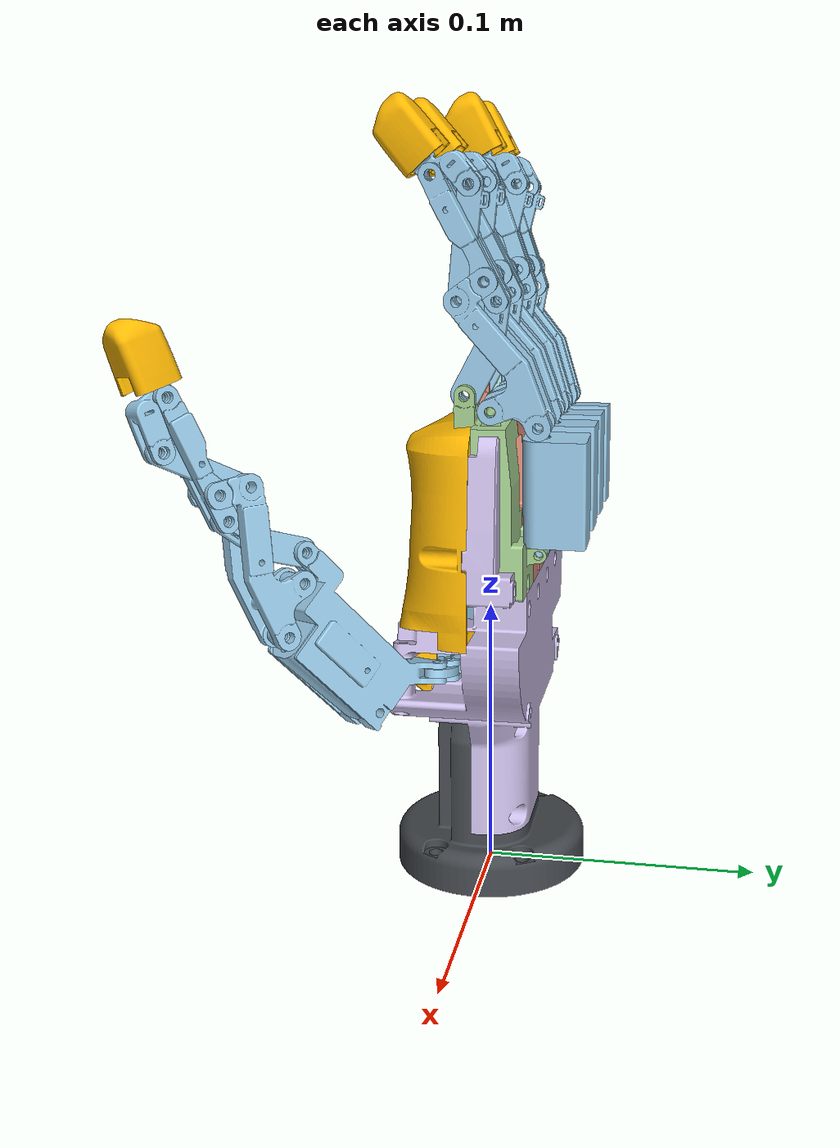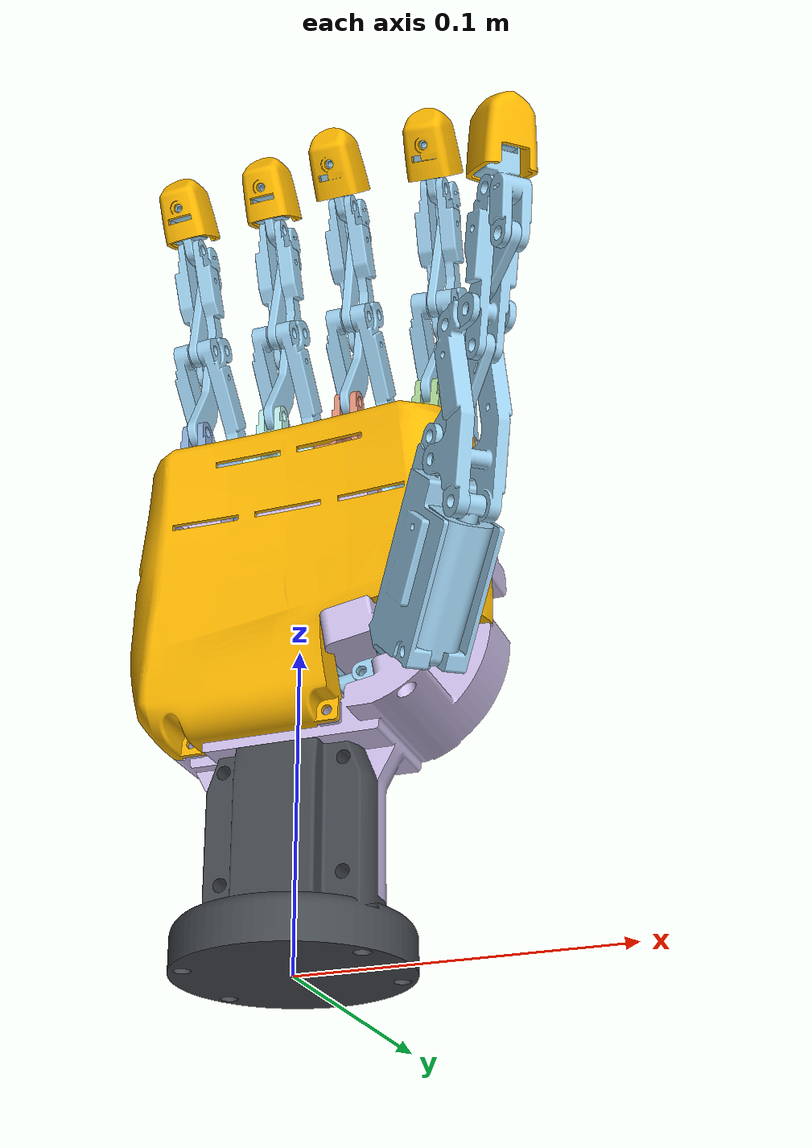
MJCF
<?xml version="1.0" ?>
<!-- Generated using onshape-to-robot -->
<!-- Onshape https://cad.onshape.com/documents/0a0f899ce59c60b61859c991/w/d22d541f278fbcb2dfd45b88/e/3d0f6edf0206f9f0b58d8fd9 -->
<mujoco model="bananaHand">
  <compiler angle="radian" meshdir="assets" autolimits="true"/>
  <default>
    <default class="bananaHand">
      <joint damping="0.0005"/>
      <position kp="2000" dampratio="0.0001"/>
      <default class="visual">
        <geom type="mesh" contype="0" conaffinity="0" group="2"/>
      </default>
      <default class="collision">
        <geom group="3"/>
      </default>
    </default>
  </default>
  <worldbody>
    <!-- Link wrist_mount -->
    <body name="wrist_mount" pos="0 0 0" quat="1 0 0 0" childclass="bananaHand">
      <inertial pos="-6.18886e-06 -0.00237089 0.0161077" mass="0.103992" fullinertia="5.21252e-05 5.33286e-05 5.15278e-05 -3.087e-09 2.8937e-08 6.35601e-06"/>
      <!-- Part wrist_mount -->
      <geom type="mesh" class="visual" pos="-0.00291653 -0 0.0813183" quat="1 -0 -0 -0" mesh="wrist_mount" material="wrist_mount_material"/>
      <!-- Link hand_base -->
      <body name="hand_base" pos="-0.01886 -0.003 0.05977" quat="0.707107 0.707107 -0 0">
        <!-- Joint from wrist_mount to hand_base -->
        <!-- Joint is "fixed", skipping it -->
        <inertial pos="0.0227711 0.0368198 -0.00970441" mass="0.24691" fullinertia="0.00031481 0.000210808 0.000492602 4.41066e-06 -8.72699e-06 6.42656e-06"/>
        <!-- Part hand_base -->
        <geom type="mesh" class="visual" pos="0.0159435 0.0215483 -0.003" quat="0.707107 -0.707107 0 -0" mesh="hand_base" material="hand_base_material"/>
        <!-- Frame closing_thumbpivot_1 -->
        <site group="3" name="closing_thumbpivot_1" pos="0.058502 0.0313007 0.0215" quat="0.704416 0.704416 0.0616284 0.0616284"/>
        <!-- Frame closing_thumbpivot_1_z -->
        <site group="3" name="closing_thumbpivot_1_z" pos="0.0758669 -0.0671801 0.0215" quat="0.704416 0.704416 0.0616284 0.0616284"/>
        <!-- Link index_base -->
        <body name="index_base" pos="0.0607318 0.108855 -0.008" quat="0 -1 0 -0">
          <!-- Joint from hand_base to index_base -->
          <!-- Joint is "fixed", skipping it -->
          <inertial pos="-0.000915189 0.0173428 0.00659471" mass="0.00908632" fullinertia="3.91326e-06 7.16004e-07 3.97477e-06 9.919e-08 2.4255e-08 -8.53174e-07"/>
          <!-- Part index_base -->
          <geom type="mesh" class="visual" pos="-0.0447883 0.0873066 -0.005" quat="0.707107 0.707107 -0 -0" mesh="index_base" material="index_base_material"/>
          <!-- Frame closing_indexrev3_2 -->
          <site group="3" name="closing_indexrev3_2" pos="-0.00379499 -0.0116902 0.003" quat="0.0293023 -0.706499 -0.0293023 -0.706499"/>
          <!-- Frame closing_indexrev3_2_z -->
          <site group="3" name="closing_indexrev3_2_z" pos="0.0958616 -0.00340937 0.003" quat="0.0293023 -0.706499 -0.0293023 -0.706499"/>
          <!-- Link actuator_housing -->
          <body name="actuator_housing" pos="-0.000613381 0.0375721 0.0185" quat="0.706541 -0.030325 0.706456 0.0282795">
            <!-- Joint from index_base to actuator_housing -->
            <joint axis="0 0 1" name="indexrev1" type="hinge"/>
            <inertial pos="-0.00615503 -0.0206966 -0.0025" mass="0.012849" fullinertia="1.75829e-06 7.16933e-07 1.97489e-06 -4.3769e-08 -0 -0"/>
            <!-- Part actuator_housing -->
            <geom type="mesh" class="visual" pos="0 -0.003 -0.0025" quat="0.707107 0.707107 -0 0" mesh="actuator_housing" material="actuator_housing_material"/>
            <!-- Link actuator_piston -->
            <body name="actuator_piston" pos="-0 -0.00975 -0.0025" quat="0 -0 0.707107 0.707107">
              <!-- Joint from actuator_housing to actuator_piston -->
              <joint axis="0 0 1" name="indexpiston" type="slide" range="-0.01825000000000018 -1.7802599672211983e-16"/>
              <inertial pos="-0 -0 -0.0184461" mass="0.00107731" fullinertia="1.20116e-07 1.20153e-07 4.363e-09 0 0 0"/>
              <!-- Part actuator_piston -->
              <geom type="mesh" class="visual" pos="-0 -0 0" quat="0 1 0 0" mesh="actuator_piston" material="actuator_piston_material"/>
              <!-- Link mcp_1 -->
              <body name="mcp_1" pos="-0 -0.00314 -0.0341" quat="0.696301 -0.696301 0.123148 0.123148">
                <!-- Joint from actuator_piston to mcp_1 -->
                <joint axis="0 0 1" name="indexrev2" type="hinge"/>
                <inertial pos="-0.00396774 0.02456 0.00314" mass="0.00589055" fullinertia="1.69298e-06 3.16979e-07 1.6373e-06 1.9048e-07 -0 -0"/>
                <!-- Part mcp_1 -->
                <geom type="mesh" class="visual" pos="-0.013 0.01 0.00314" quat="0.707107 -0.707107 -0 -0" mesh="mcp_1" material="mcp_1_material"/>
                <!-- Frame closing_indexrev3_1 -->
                <site group="3" name="closing_indexrev3_1" pos="-0.013 0.01 -0.00161" quat="1 0 0 0"/>
                <!-- Frame closing_indexrev3_1_z -->
                <site group="3" name="closing_indexrev3_1_z" pos="-0.013 0.01 0.09839" quat="1 0 0 0"/>
                <!-- Frame closing_indexrev7_2 -->
                <site group="3" name="closing_indexrev7_2" pos="0 0.05 0.00774" quat="1 0 0 0"/>
                <!-- Frame closing_indexrev7_2_z -->
                <site group="3" name="closing_indexrev7_2_z" pos="0 0.05 0.10774" quat="1 0 0 0"/>
                <!-- Link pip_2 -->
                <body name="pip_2" pos="-0.0106252 0.047153 0.00464" quat="0.973728 0 0 -0.227713">
                  <!-- Joint from mcp_1 to pip_2 -->
                  <joint axis="0 0 1" name="indexrev5" type="hinge"/>
                  <inertial pos="-3.24138e-05 0.0189849 -0.0015" mass="0.00113266" fullinertia="1.54822e-07 7.08e-09 1.60354e-07 -3.423e-09 0 -0"/>
                  <!-- Part pip_2 -->
                  <geom type="mesh" class="visual" pos="0 0.015 -0.0015" quat="0.707107 -0.707107 -0 0" mesh="pip_2" material="pip_2_material"/>
                  <!-- Link dip_1 -->
                  <body name="dip_1" pos="-0 0.0365 0.0001" quat="0 0.918852 0.394602 -0">
                    <!-- Joint from pip_2 to dip_1 -->
                    <joint axis="0 0 1" name="indexrev8" type="hinge" range="-1.2831247046461076 0.08370581700023294"/>
                    <inertial pos="-0.00485498 -0.0148401 0.0016" mass="0.00216187" fullinertia="1.7401e-07 5.3677e-08 1.93366e-07 -5.2995e-08 0 -0"/>
                    <!-- Part dip_1 -->
                    <geom type="mesh" class="visual" pos="-0.0075 -0.01 0.0016" quat="0.707107 0.707107 0 0" mesh="dip_1" material="dip_1_material"/>
                    <!-- Frame closing_indexrev9_1 -->
                    <site group="3" name="closing_indexrev9_1" pos="-0.0075 -0.01 0.0001" quat="0 1 0 0"/>
                    <!-- Frame closing_indexrev9_1_z -->
                    <site group="3" name="closing_indexrev9_1_z" pos="-0.0075 -0.01 -0.0999" quat="0 1 0 0"/>
                    <!-- Link fingertip -->
                    <body name="fingertip" pos="-0.00325 -0.025 0.0016" quat="0.707107 0 -0.707107 -0">
                      <!-- Joint from dip_1 to fingertip -->
                      <!-- Joint is "fixed", skipping it -->
                      <inertial pos="-1.53313e-05 -5.21544e-05 0.00584875" mass="0.00193004" fullinertia="1.24126e-07 1.07425e-07 1.27251e-07 -1.77e-10 4.9e-11 -9.13e-09"/>
                      <!-- Part fingertip -->
                      <geom type="mesh" class="visual" pos="0 0.015 0.00425" quat="0.5 0.5 0.5 -0.5" mesh="fingertip" material="fingertip_material"/>
                    </body>
                  </body>
                </body>
              </body>
            </body>
          </body>
          <!-- Link mcp_2 -->
          <body name="mcp_2" pos="-0.000183516 -0.0159056 -0.006" quat="0.677803 -0.144632 -0.692157 0.201452">
            <!-- Joint from index_base to mcp_2 -->
            <joint axis="0 0 1" name="indexrev4" type="hinge"/>
            <inertial pos="-0.000980814 -0.0151619 -0.0015" mass="0.00128032" fullinertia="1.51146e-07 1.3562e-08 1.62937e-07 -1.728e-08 0 -0"/>
            <!-- Part mcp_2 -->
            <geom type="mesh" class="visual" pos="-0 0 -0.0015" quat="0.5 0.5 0.5 -0.5" mesh="mcp_2" material="mcp_2_material"/>
            <!-- Link pip_1 -->
            <body name="pip_1" pos="-0.005 -0.0325 -0.0031" quat="0.883363 0 0 -0.46869">
              <!-- Joint from mcp_2 to pip_1 -->
              <joint axis="0 0 1" name="indexrev6" type="hinge" range="-0.98788114855292 0.10779664540511469"/>
              <inertial pos="0.000173285 -0.0227423 0.0016" mass="0.00231455" fullinertia="4.46291e-07 3.2362e-08 4.34547e-07 -2.143e-09 -0 0"/>
              <!-- Part pip_1 -->
              <geom type="mesh" class="visual" pos="-0 -0.0074 0.0016" quat="0.707107 0.707107 0 0" mesh="pip_1" material="pip_1_material"/>
              <!-- Frame closing_indexrev7_1 -->
              <site group="3" name="closing_indexrev7_1" pos="0 -0.0074 -0.003" quat="0 1 0 0"/>
              <!-- Frame closing_indexrev7_1_z -->
              <site group="3" name="closing_indexrev7_1_z" pos="0 -0.0074 -0.103" quat="0 1 0 0"/>
              <!-- Frame closing_indexrev9_2 -->
              <site group="3" name="closing_indexrev9_2" pos="0 -0.0444 0.0001" quat="0 1 0 0"/>
              <!-- Frame closing_indexrev9_2_z -->
              <site group="3" name="closing_indexrev9_2_z" pos="0 -0.0444 -0.0999" quat="0 1 0 0"/>
            </body>
          </body>
        </body>
        <!-- Link middle_base -->
        <body name="middle_base" pos="0.0343032 0.108855 -0.008" quat="0 -1 0 -0">
          <!-- Joint from hand_base to middle_base -->
          <!-- Joint is "fixed", skipping it -->
          <inertial pos="-0.00110743 0.0165611 0.00645915" mass="0.00951968" fullinertia="4.19962e-06 7.54185e-07 4.25616e-06 -1.1399e-08 1.5511e-08 -9.14817e-07"/>
          <!-- Part middle_base -->
          <geom type="mesh" class="visual" pos="-0.0183597 0.0873066 -0.005" quat="0.707107 0.707107 -0 0" mesh="middle_base" material="middle_base_material"/>
          <!-- Frame closing_middlerev3_2 -->
          <site group="3" name="closing_middlerev3_2" pos="0.00496225 -0.0121185 0.003" quat="0.70708 0.00617059 -0.70708 0.00617059"/>
          <!-- Frame closing_middlerev3_2_z -->
          <site group="3" name="closing_middlerev3_2_z" pos="-0.0950225 -0.0138638 0.003" quat="0.70708 0.00617059 -0.70708 0.00617059"/>
          <!-- Link actuator_housing_2 -->
          <body name="actuator_housing_2" pos="0.0018604 0.0366644 0.0185" quat="0.707088 -0.00724924 0.70707 0.00509193">
            <!-- Joint from middle_base to actuator_housing_2 -->
            <joint axis="0 0 1" name="middlerev1" type="hinge"/>
            <inertial pos="-0.00615503 -0.0206966 -0.0025" mass="0.012849" fullinertia="1.75829e-06 7.16933e-07 1.97489e-06 -4.3769e-08 -0 0"/>
            <!-- Part actuator_housing_2 -->
            <geom type="mesh" class="visual" pos="0 -0.003 -0.0025" quat="0.707107 0.707107 -0 -0" mesh="actuator_housing" material="actuator_housing_material"/>
            <!-- Link actuator_piston_2 -->
            <body name="actuator_piston_2" pos="-0 -0.0097717 -0.0025" quat="0 0 -0.707107 -0.707107">
              <!-- Joint from actuator_housing_2 to actuator_piston_2 -->
              <joint axis="0 0 1" name="middlepiston" type="slide" range="-0.018228303046465586 2.169695353441514e-05"/>
              <inertial pos="0 -0 -0.0184461" mass="0.00107731" fullinertia="1.20116e-07 1.20153e-07 4.363e-09 0 0 -0"/>
              <!-- Part actuator_piston_2 -->
              <geom type="mesh" class="visual" pos="0 0 -0" quat="0 1 0 0" mesh="actuator_piston" material="actuator_piston_material"/>
              <!-- Link mcp_1_2 -->
              <body name="mcp_1_2" pos="0 0.0036 -0.0341" quat="0.696206 0.696206 0.123685 -0.123685">
                <!-- Joint from actuator_piston_2 to mcp_1_2 -->
                <joint axis="0 0 1" name="middlerev2" type="hinge"/>
                <inertial pos="-0.00396774 -0.02456 0.0036" mass="0.00589055" fullinertia="1.69298e-06 3.16979e-07 1.6373e-06 -1.9048e-07 0 -0"/>
                <!-- Part mcp_1_2 -->
                <geom type="mesh" class="visual" pos="-0.013 -0.01 0.0036" quat="0.707107 0.707107 -0 -0" mesh="mcp_1" material="mcp_1_material"/>
                <!-- Frame closing_middlerev3_1 -->
                <site group="3" name="closing_middlerev3_1" pos="-0.013 -0.01 -0.00115" quat="1 -0 0 0"/>
                <!-- Frame closing_middlerev3_1_z -->
                <site group="3" name="closing_middlerev3_1_z" pos="-0.013 -0.01 0.09885" quat="1 -0 0 0"/>
                <!-- Frame closing_middlerev7_2 -->
                <site group="3" name="closing_middlerev7_2" pos="0 -0.05 -0.001" quat="0 1 0 0"/>
                <!-- Frame closing_middlerev7_2_z -->
                <site group="3" name="closing_middlerev7_2_z" pos="0 -0.05 -0.101" quat="0 1 0 0"/>
                <!-- Link pip_2_2 -->
                <body name="pip_2_2" pos="-0.0106252 -0.047153 0.0021" quat="0 -0.973953 -0.226751 0">
                  <!-- Joint from mcp_1_2 to pip_2_2 -->
                  <joint axis="0 0 1" name="middlerev5" type="hinge"/>
                  <inertial pos="-3.24138e-05 0.0189849 -0.0015" mass="0.00113266" fullinertia="1.54822e-07 7.08e-09 1.60354e-07 -3.423e-09 0 0"/>
                  <!-- Part pip_2_2 -->
                  <geom type="mesh" class="visual" pos="0 0.015 -0.0015" quat="0.707107 -0.707107 -0 0" mesh="pip_2" material="pip_2_material"/>
                  <!-- Link dip_1_2 -->
                  <body name="dip_1_2" pos="0 0.0365 0.0001" quat="0 -0.918403 -0.395646 -0">
                    <!-- Joint from pip_2_2 to dip_1_2 -->
                    <joint axis="0 0 1" name="middlerev8" type="hinge" range="-1.2808536958560035 0.08597682579033705"/>
                    <inertial pos="-0.00485498 -0.0148401 0.0016" mass="0.00216187" fullinertia="1.7401e-07 5.3677e-08 1.93366e-07 -5.2995e-08 0 -0"/>
                    <!-- Part dip_1_2 -->
                    <geom type="mesh" class="visual" pos="-0.0075 -0.01 0.0016" quat="0.707107 0.707107 0 0" mesh="dip_1" material="dip_1_material"/>
                    <!-- Frame closing_middlerev9_1 -->
                    <site group="3" name="closing_middlerev9_1" pos="-0.0075 -0.01 0.0001" quat="0 1 0 0"/>
                    <!-- Frame closing_middlerev9_1_z -->
                    <site group="3" name="closing_middlerev9_1_z" pos="-0.0075 -0.01 -0.0999" quat="0 1 0 0"/>
                    <!-- Link fingertip_2 -->
                    <body name="fingertip_2" pos="-0.00325 -0.025 0.0016" quat="0.707107 -0 -0.707107 -0">
                      <!-- Joint from dip_1_2 to fingertip_2 -->
                      <!-- Joint is "fixed", skipping it -->
                      <inertial pos="-1.53313e-05 -5.21544e-05 0.00584875" mass="0.00193004" fullinertia="1.24126e-07 1.07425e-07 1.27251e-07 -1.77e-10 4.9e-11 -9.13e-09"/>
                      <!-- Part fingertip_2 -->
                      <geom type="mesh" class="visual" pos="0 0.015 0.00425" quat="0.5 0.5 0.5 -0.5" mesh="fingertip" material="fingertip_material"/>
                    </body>
                  </body>
                </body>
              </body>
            </body>
          </body>
          <!-- Link mcp_2_2 -->
          <body name="mcp_2_2" pos="0.00179128 -0.0166746 -0.006" quat="0.166841 0.684125 0.178808 0.687142">
            <!-- Joint from middle_base to mcp_2_2 -->
            <joint axis="0 0 1" name="middlerev4" type="hinge"/>
            <inertial pos="-0.000980814 0.0151619 -0.0015" mass="0.00128032" fullinertia="1.51146e-07 1.3562e-08 1.62937e-07 1.728e-08 0 0"/>
            <!-- Part mcp_2_2 -->
            <geom type="mesh" class="visual" pos="-0 0 -0.0015" quat="0.5 -0.5 -0.5 -0.5" mesh="mcp_2" material="mcp_2_material"/>
            <!-- Link pip_1_2 -->
            <body name="pip_1_2" pos="-0.005 0.0325 0.0001" quat="0 -0.882685 -0.469965 -0">
              <!-- Joint from mcp_2_2 to pip_1_2 -->
              <joint axis="0 0 1" name="middlerev6" type="hinge" range="-0.984993611771781 0.11068418218625364"/>
              <inertial pos="0.000173285 -0.0227423 0.0016" mass="0.00231455" fullinertia="4.46291e-07 3.2362e-08 4.34547e-07 -2.143e-09 0 -0"/>
              <!-- Part pip_1_2 -->
              <geom type="mesh" class="visual" pos="0 -0.0074 0.0016" quat="0.707107 0.707107 -0 -0" mesh="pip_1" material="pip_1_material"/>
              <!-- Frame closing_middlerev7_1 -->
              <site group="3" name="closing_middlerev7_1" pos="0 -0.0074 -0.003" quat="0 1 0 0"/>
              <!-- Frame closing_middlerev7_1_z -->
              <site group="3" name="closing_middlerev7_1_z" pos="0 -0.0074 -0.103" quat="0 1 0 0"/>
              <!-- Frame closing_middlerev9_2 -->
              <site group="3" name="closing_middlerev9_2" pos="-0 -0.0444 0.0001" quat="0 1 0 0"/>
              <!-- Frame closing_middlerev9_2_z -->
              <site group="3" name="closing_middlerev9_2_z" pos="0 -0.0444 -0.0999" quat="0 1 0 0"/>
            </body>
          </body>
        </body>
        <!-- Link ring_base -->
        <body name="ring_base" pos="0.00840738 0.108855 -0.008" quat="0 -1 0 -0">
          <!-- Joint from hand_base to ring_base -->
          <!-- Joint is "fixed", skipping it -->
          <inertial pos="0.000885706 0.0164993 0.00649729" mass="0.00986702" fullinertia="4.24391e-06 7.83956e-07 4.32174e-06 1.1066e-08 -1.1259e-08 -9.22392e-07"/>
          <!-- Part ring_base -->
          <geom type="mesh" class="visual" pos="0.00753608 0.0873066 -0.005" quat="0.707107 0.707107 -0 0" mesh="ring_base" material="ring_base_material"/>
          <!-- Frame closing_ringrev3_2 -->
          <site group="3" name="closing_ringrev3_2" pos="0.00464272 -0.0123136 0.003" quat="0.7071 -0.00308533 -0.7071 -0.00308533"/>
          <!-- Frame closing_ringrev3_2_z -->
          <site group="3" name="closing_ringrev3_2_z" pos="-0.0953535 -0.011441 0.003" quat="0.7071 -0.00308533 -0.7071 -0.00308533"/>
          <!-- Link actuator_housing_3 -->
          <body name="actuator_housing_3" pos="0.00281892 0.0365337 0.0185" quat="0.707104 0.00416413 0.707095 -0.00200651">
            <!-- Joint from ring_base to actuator_housing_3 -->
            <joint axis="0 0 1" name="ringrev1" type="hinge"/>
            <inertial pos="-0.00615503 -0.0206966 -0.0025" mass="0.012849" fullinertia="1.75829e-06 7.16933e-07 1.97489e-06 -4.3769e-08 -0 0"/>
            <!-- Part actuator_housing_3 -->
            <geom type="mesh" class="visual" pos="0 -0.003 -0.0025" quat="0.707107 0.707107 -0 0" mesh="actuator_housing" material="actuator_housing_material"/>
            <!-- Link actuator_piston_3 -->
            <body name="actuator_piston_3" pos="-0 -0.0090018 -0.0025" quat="0 -0 0.707107 0.707107">
              <!-- Joint from actuator_housing_3 to actuator_piston_3 -->
              <joint axis="0 0 1" name="ringpiston" type="slide" range="-0.018998200437010764 1.7995629892377223e-06"/>
              <inertial pos="0 -0 -0.0184461" mass="0.00107731" fullinertia="1.20116e-07 1.20153e-07 4.363e-09 0 0 0"/>
              <!-- Part actuator_piston_3 -->
              <geom type="mesh" class="visual" pos="0 0 0" quat="0 1 0 0" mesh="actuator_piston" material="actuator_piston_material"/>
              <!-- Link mcp_1_3 -->
              <body name="mcp_1_3" pos="0 0.0036 -0.0341" quat="0.699383 0.699383 0.104229 -0.104229">
                <!-- Joint from actuator_piston_3 to mcp_1_3 -->
                <joint axis="0 0 1" name="ringrev2" type="hinge"/>
                <inertial pos="-0.00396774 -0.02456 0.0036" mass="0.00589055" fullinertia="1.69298e-06 3.16979e-07 1.6373e-06 -1.9048e-07 0 -0"/>
                <!-- Part mcp_1_3 -->
                <geom type="mesh" class="visual" pos="-0.013 -0.01 0.0036" quat="0.707107 0.707107 -0 -0" mesh="mcp_1" material="mcp_1_material"/>
                <!-- Frame closing_ringrev3_1 -->
                <site group="3" name="closing_ringrev3_1" pos="-0.013 -0.01 -0.00115" quat="1 -0 -0 -0"/>
                <!-- Frame closing_ringrev3_1_z -->
                <site group="3" name="closing_ringrev3_1_z" pos="-0.013 -0.01 0.09885" quat="1 -0 -0 -0"/>
                <!-- Frame closing_ringrev7_2 -->
                <site group="3" name="closing_ringrev7_2" pos="0 -0.05 -0.001" quat="0 1 0 0"/>
                <!-- Frame closing_ringrev7_2_z -->
                <site group="3" name="closing_ringrev7_2_z" pos="0 -0.05 -0.101" quat="0 1 0 0"/>
                <!-- Link pip_2_3 -->
                <body name="pip_2_3" pos="-0.0106252 -0.047153 0.0021" quat="0 0.965008 0.26222 0">
                  <!-- Joint from mcp_1_3 to pip_2_3 -->
                  <joint axis="0 0 1" name="ringrev5" type="hinge"/>
                  <inertial pos="-3.24138e-05 0.0189849 -0.0015" mass="0.00113266" fullinertia="1.54822e-07 7.08e-09 1.60354e-07 -3.423e-09 -0 0"/>
                  <!-- Part pip_2_3 -->
                  <geom type="mesh" class="visual" pos="0 0.015 -0.0015" quat="0.707107 -0.707107 -0 0" mesh="pip_2" material="pip_2_material"/>
                  <!-- Link dip_1_3 -->
                  <body name="dip_1_3" pos="0 0.0365 0.0001" quat="0 -0.93452 -0.355911 -0">
                    <!-- Joint from pip_2_3 to dip_1_3 -->
                    <joint axis="0 0 1" name="ringrev8" type="hinge" range="-1.366617383255992 0.00021313839034853288"/>
                    <inertial pos="-0.00485498 -0.0148401 0.0016" mass="0.00216187" fullinertia="1.7401e-07 5.3677e-08 1.93366e-07 -5.2995e-08 0 -0"/>
                    <!-- Part dip_1_3 -->
                    <geom type="mesh" class="visual" pos="-0.0075 -0.01 0.0016" quat="0.707107 0.707107 0 0" mesh="dip_1" material="dip_1_material"/>
                    <!-- Frame closing_ringrev9_1 -->
                    <site group="3" name="closing_ringrev9_1" pos="-0.0075 -0.01 0.0001" quat="0 1 0 0"/>
                    <!-- Frame closing_ringrev9_1_z -->
                    <site group="3" name="closing_ringrev9_1_z" pos="-0.0075 -0.01 -0.0999" quat="0 1 0 0"/>
                    <!-- Link fingertip_3 -->
                    <body name="fingertip_3" pos="-0.00325 -0.025 0.0016" quat="0.707107 -0 -0.707107 -0">
                      <!-- Joint from dip_1_3 to fingertip_3 -->
                      <!-- Joint is "fixed", skipping it -->
                      <inertial pos="-1.53313e-05 -5.21544e-05 0.00584875" mass="0.00193004" fullinertia="1.24126e-07 1.07425e-07 1.27251e-07 -1.77e-10 4.9e-11 -9.13e-09"/>
                      <!-- Part fingertip_3 -->
                      <geom type="mesh" class="visual" pos="0 0.015 0.00425" quat="0.5 0.5 0.5 -0.5" mesh="fingertip" material="fingertip_material"/>
                    </body>
                  </body>
                </body>
              </body>
            </body>
          </body>
          <!-- Link mcp_2_3 -->
          <body name="mcp_2_3" pos="0.00135358 -0.0167851 -0.006" quat="0.188011 0.683268 0.182056 0.681654">
            <!-- Joint from ring_base to mcp_2_3 -->
            <joint axis="0 0 1" name="ringrev4" type="hinge"/>
            <inertial pos="-0.000980814 0.0151619 -0.0015" mass="0.00128032" fullinertia="1.51146e-07 1.3562e-08 1.62937e-07 1.728e-08 0 0"/>
            <!-- Part mcp_2_3 -->
            <geom type="mesh" class="visual" pos="-0 0 -0.0015" quat="0.5 -0.5 -0.5 -0.5" mesh="mcp_2" material="mcp_2_material"/>
            <!-- Link pip_1_3 -->
            <body name="pip_1_3" pos="-0.005 0.0325 0.0001" quat="0 0.90727 0.420548 -0">
              <!-- Joint from mcp_2_3 to pip_1_3 -->
              <joint axis="0 0 1" name="ringrev6" type="hinge" range="-1.0953978737612031 0.0002799201968315401"/>
              <inertial pos="0.000173285 -0.0227423 0.0016" mass="0.00231455" fullinertia="4.46291e-07 3.2362e-08 4.34547e-07 -2.143e-09 0 0"/>
              <!-- Part pip_1_3 -->
              <geom type="mesh" class="visual" pos="0 -0.0074 0.0016" quat="0.707107 0.707107 -0 0" mesh="pip_1" material="pip_1_material"/>
              <!-- Frame closing_ringrev7_1 -->
              <site group="3" name="closing_ringrev7_1" pos="0 -0.0074 -0.003" quat="0 1 0 0"/>
              <!-- Frame closing_ringrev7_1_z -->
              <site group="3" name="closing_ringrev7_1_z" pos="0 -0.0074 -0.103" quat="0 1 0 0"/>
              <!-- Frame closing_ringrev9_2 -->
              <site group="3" name="closing_ringrev9_2" pos="0 -0.0444 0.0001" quat="0 1 0 0"/>
              <!-- Frame closing_ringrev9_2_z -->
              <site group="3" name="closing_ringrev9_2_z" pos="0 -0.0444 -0.0999" quat="0 1 0 0"/>
            </body>
          </body>
        </body>
        <!-- Link pinky_base -->
        <body name="pinky_base" pos="-0.0181011 0.108855 -0.008" quat="0 -1 0 -0">
          <!-- Joint from hand_base to pinky_base -->
          <!-- Joint is "fixed", skipping it -->
          <inertial pos="0.00108912 0.0171044 0.00656354" mass="0.0094602" fullinertia="4.07813e-06 7.5829e-07 4.15727e-06 -1.11179e-07 -2.491e-08 -8.89574e-07"/>
          <!-- Part pinky_base -->
          <geom type="mesh" class="visual" pos="0.0340445 0.0873066 -0.005" quat="0.707107 0.707107 -0 0" mesh="pinky_base" material="pinky_base_material"/>
          <!-- Frame closing_pinkyrev3_2 -->
          <site group="3" name="closing_pinkyrev3_2" pos="0.00412758 -0.0120009 0.003" quat="0.706864 -0.0185099 -0.706864 -0.0185099"/>
          <!-- Frame closing_pinkyrev3_2_z -->
          <site group="3" name="closing_pinkyrev3_2_z" pos="-0.0957354 -0.00676726 0.003" quat="0.706864 -0.0185099 -0.706864 -0.0185099"/>
          <!-- Link actuator_housing_4 -->
          <body name="actuator_housing_4" pos="0.00444357 0.0370201 0.0185" quat="0.706892 0.0195903 0.706835 -0.0174294">
            <!-- Joint from pinky_base to actuator_housing_4 -->
            <joint axis="0 0 1" name="pinkyrev1" type="hinge"/>
            <inertial pos="-0.00615503 -0.0206966 -0.0025" mass="0.012849" fullinertia="1.75829e-06 7.16933e-07 1.97489e-06 -4.3769e-08 -0 0"/>
            <!-- Part actuator_housing_4 -->
            <geom type="mesh" class="visual" pos="0 -0.003 -0.0025" quat="0.707107 0.707107 -0 0" mesh="actuator_housing" material="actuator_housing_material"/>
            <!-- Link actuator_piston_4 -->
            <body name="actuator_piston_4" pos="0 -0.00914072 -0.0025" quat="0 -0 0.707107 0.707107">
              <!-- Joint from actuator_housing_4 to actuator_piston_4 -->
              <joint axis="0 0 1" name="pinkypiston" type="slide" range="-0.018859275737118673 0.0001407242628813268"/>
              <inertial pos="0 -0 -0.0184461" mass="0.00107731" fullinertia="1.20116e-07 1.20153e-07 4.363e-09 0 0 0"/>
              <!-- Part actuator_piston_4 -->
              <geom type="mesh" class="visual" pos="0 -0 0" quat="0 1 0 0" mesh="actuator_piston" material="actuator_piston_material"/>
              <!-- Link mcp_1_4 -->
              <body name="mcp_1_4" pos="0 0.0036 -0.0341" quat="0.699389 0.699389 0.104187 -0.104187">
                <!-- Joint from actuator_piston_4 to mcp_1_4 -->
                <joint axis="0 0 1" name="pinkyrev2" type="hinge"/>
                <inertial pos="-0.00396774 -0.02456 0.0036" mass="0.00589055" fullinertia="1.69298e-06 3.16979e-07 1.6373e-06 -1.9048e-07 0 -0"/>
                <!-- Part mcp_1_4 -->
                <geom type="mesh" class="visual" pos="-0.013 -0.01 0.0036" quat="0.707107 0.707107 0 -0" mesh="mcp_1" material="mcp_1_material"/>
                <!-- Frame closing_pinkyrev3_1 -->
                <site group="3" name="closing_pinkyrev3_1" pos="-0.013 -0.01 -0.00115" quat="1 -0 -0 0"/>
                <!-- Frame closing_pinkyrev3_1_z -->
                <site group="3" name="closing_pinkyrev3_1_z" pos="-0.013 -0.01 0.09885" quat="1 -0 -0 0"/>
                <!-- Frame closing_pinkyrev7_2 -->
                <site group="3" name="closing_pinkyrev7_2" pos="0 -0.05 -0.001" quat="0 1 0 0"/>
                <!-- Frame closing_pinkyrev7_2_z -->
                <site group="3" name="closing_pinkyrev7_2_z" pos="0 -0.05 -0.101" quat="0 1 0 0"/>
                <!-- Link pip_2_4 -->
                <body name="pip_2_4" pos="-0.0106252 -0.047153 0.0021" quat="0 -0.964985 -0.262306 0">
                  <!-- Joint from mcp_1_4 to pip_2_4 -->
                  <joint axis="0 0 1" name="pinkyrev5" type="hinge"/>
                  <inertial pos="-3.24138e-05 0.0189849 -0.0015" mass="0.00113266" fullinertia="1.54822e-07 7.08e-09 1.60354e-07 -3.423e-09 0 -0"/>
                  <!-- Part pip_2_4 -->
                  <geom type="mesh" class="visual" pos="0 0.015 -0.0015" quat="0.707107 -0.707107 -0 -0" mesh="pip_2" material="pip_2_material"/>
                  <!-- Link dip_1_4 -->
                  <body name="dip_1_4" pos="0 0.0365 0.0001" quat="0 0.934558 0.355812 -0">
                    <!-- Joint from pip_2_4 to dip_1_4 -->
                    <joint axis="0 0 1" name="pinkyrev8" type="hinge" range="-1.3668305216460332 3.0730973321624333e-13"/>
                    <inertial pos="-0.00485498 -0.0148401 0.0016" mass="0.00216187" fullinertia="1.7401e-07 5.3677e-08 1.93366e-07 -5.2995e-08 0 -0"/>
                    <!-- Part dip_1_4 -->
                    <geom type="mesh" class="visual" pos="-0.0075 -0.01 0.0016" quat="0.707107 0.707107 -0 0" mesh="dip_1" material="dip_1_material"/>
                    <!-- Frame closing_pinkyrev9_1 -->
                    <site group="3" name="closing_pinkyrev9_1" pos="-0.0075 -0.01 0.0001" quat="0 1 0 0"/>
                    <!-- Frame closing_pinkyrev9_1_z -->
                    <site group="3" name="closing_pinkyrev9_1_z" pos="-0.0075 -0.01 -0.0999" quat="0 1 0 0"/>
                    <!-- Link fingertip_4 -->
                    <body name="fingertip_4" pos="-0.00325 -0.025 0.0016" quat="0.707107 -0 -0.707107 -0">
                      <!-- Joint from dip_1_4 to fingertip_4 -->
                      <!-- Joint is "fixed", skipping it -->
                      <inertial pos="-1.53313e-05 -5.21544e-05 0.00584875" mass="0.00193004" fullinertia="1.24126e-07 1.07425e-07 1.27251e-07 -1.77e-10 4.9e-11 -9.13e-09"/>
                      <!-- Part fingertip_4 -->
                      <geom type="mesh" class="visual" pos="0 0.015 0.00425" quat="0.5 0.5 0.5 -0.5" mesh="fingertip" material="fingertip_material"/>
                    </body>
                  </body>
                </body>
              </body>
            </body>
          </body>
          <!-- Link mcp_2_4 -->
          <body name="mcp_2_4" pos="0.000646523 -0.0163246 -0.006" quat="0.202863 0.687071 0.167134 0.677382">
            <!-- Joint from pinky_base to mcp_2_4 -->
            <joint axis="0 0 1" name="pinkyrev4" type="hinge"/>
            <inertial pos="-0.000980814 0.0151619 -0.0015" mass="0.00128032" fullinertia="1.51146e-07 1.3562e-08 1.62937e-07 1.728e-08 0 -0"/>
            <!-- Part mcp_2_4 -->
            <geom type="mesh" class="visual" pos="0 -0 -0.0015" quat="0.5 -0.5 -0.5 -0.5" mesh="mcp_2" material="mcp_2_material"/>
            <!-- Link pip_1_4 -->
            <body name="pip_1_4" pos="-0.005 0.0325 0.0001" quat="0 -0.907329 -0.420422 -0">
              <!-- Joint from mcp_2_4 to pip_1_4 -->
              <joint axis="0 0 1" name="pinkyrev6" type="hinge" range="-1.095675671969139 2.121988895709137e-06"/>
              <inertial pos="0.000173285 -0.0227423 0.0016" mass="0.00231455" fullinertia="4.46291e-07 3.2362e-08 4.34547e-07 -2.143e-09 0 -0"/>
              <!-- Part pip_1_4 -->
              <geom type="mesh" class="visual" pos="0 -0.0074 0.0016" quat="0.707107 0.707107 0 0" mesh="pip_1" material="pip_1_material"/>
              <!-- Frame closing_pinkyrev7_1 -->
              <site group="3" name="closing_pinkyrev7_1" pos="0 -0.0074 -0.003" quat="0 1 0 0"/>
              <!-- Frame closing_pinkyrev7_1_z -->
              <site group="3" name="closing_pinkyrev7_1_z" pos="-0 -0.0074 -0.103" quat="0 1 0 0"/>
              <!-- Frame closing_pinkyrev9_2 -->
              <site group="3" name="closing_pinkyrev9_2" pos="0 -0.0444 0.0001" quat="0 1 0 0"/>
              <!-- Frame closing_pinkyrev9_2_z -->
              <site group="3" name="closing_pinkyrev9_2_z" pos="0 -0.0444 -0.0999" quat="0 1 0 0"/>
            </body>
          </body>
        </body>
        <!-- Link actuator_housing_5 -->
        <body name="actuator_housing_5" pos="-0.00280284 0.0161755 0.004" quat="0 -0.766044 0.642788 0">
          <!-- Joint from hand_base to actuator_housing_5 -->
          <!-- Joint is "fixed", skipping it -->
          <inertial pos="-0.00615503 -0.0206966 -0.0025" mass="0.012849" fullinertia="1.75829e-06 7.16933e-07 1.97489e-06 -4.3769e-08 -0 0"/>
          <!-- Part actuator_housing_5 -->
          <geom type="mesh" class="visual" pos="0 -0.003 -0.0025" quat="0.707107 0.707107 0 -0" mesh="actuator_housing" material="actuator_housing_material"/>
          <!-- Link actuator_piston_5 -->
          <body name="actuator_piston_5" pos="-0 -0.008 -0.0025" quat="0.707107 -0.707107 0 -0">
            <!-- Joint from actuator_housing_5 to actuator_piston_5 -->
            <joint axis="0 0 1" name="tmpiston" type="slide" range="-0.01409470539354365 0.004155294606456351"/>
            <inertial pos="0 0 -0.0243514" mass="0.00107731" fullinertia="1.20116e-07 1.20153e-07 4.363e-09 0 0 0"/>
            <!-- Part actuator_piston_5 -->
            <geom type="mesh" class="visual" pos="0 0 -0.00590529" quat="0 -1 -0 -0" mesh="actuator_piston" material="actuator_piston_material"/>
            <!-- Link clevis_1 -->
            <body name="clevis_1" pos="0 0 -0.0400053" quat="0.707107 -0.707107 -0 0">
              <!-- Joint from actuator_piston_5 to clevis_1 -->
              <!-- Joint is "fixed", skipping it -->
              <inertial pos="5.3e-11 0.00537033 -1.5e-11" mass="0.000506548" fullinertia="1.1958e-08 7.212e-09 9.774e-09 -0 -0 0"/>
              <!-- Part clevis_1 -->
              <geom type="mesh" class="visual" pos="-0 0 0" quat="0.5 0.5 0.5 0.5" mesh="clevis_1" material="clevis_1_material"/>
              <!-- Link clevis_link -->
              <body name="clevis_link" pos="0 0.0095 0" quat="0.580099 -0.404332 -0.580099 0.404332">
                <!-- Joint from clevis_1 to clevis_link -->
                <joint axis="0 0 1" name="clevisrev1" type="hinge"/>
                <inertial pos="0.00375 -0 -0" mass="0.000355327" fullinertia="2.452e-09 5.429e-09 7.348e-09 -0 -0 -0"/>
                <!-- Part clevis_link -->
                <geom type="mesh" class="visual" pos="0 0 0" quat="0 1 0 0" mesh="clevis_link" material="clevis_link_material"/>
                <!-- Link thumb_base -->
                <body name="thumb_base" pos="0.0075 -0 0.00165" quat="0 0.783482 -0.621414 0">
                  <!-- Joint from clevis_link to thumb_base -->
                  <joint axis="0 0 1" name="clevisrev2" type="hinge"/>
                  <inertial pos="0.0251383 -0.0184421 -0.00915858" mass="0.0120829" fullinertia="4.78938e-06 4.16123e-06 3.24283e-06 1.0924e-06 1.19264e-06 -1.65223e-06"/>
                  <!-- Part thumb_base -->
                  <geom type="mesh" class="visual" pos="0 0 0.00165" quat="0 1 0 0" mesh="thumb_base" material="thumb_base_material"/>
                  <!-- Frame closing_thumbpivot_2 -->
                  <site group="3" name="closing_thumbpivot_2" pos="0.0125 0 -0.0026" quat="0.707107 0 0 -0.707107"/>
                  <!-- Frame closing_thumbpivot_2_z -->
                  <site group="3" name="closing_thumbpivot_2_z" pos="0.0125 0 0.0974" quat="0.707107 0 0 -0.707107"/>
                  <!-- Frame closing_thumbrev3_2 -->
                  <site group="3" name="closing_thumbrev3_2" pos="0.0416809 -0.0333933 -0.0305794" quat="0.627211 0.627211 -0.326506 -0.326506"/>
                  <!-- Frame closing_thumbrev3_2_z -->
                  <site group="3" name="closing_thumbrev3_2_z" pos="-0.0402343 -0.090751 -0.0305794" quat="0.627211 0.627211 -0.326506 -0.326506"/>
                  <!-- Link actuator_housing_6 -->
                  <body name="actuator_housing_6" pos="0.0230205 -0.0106663 0.0141002" quat="0.422774 -0.706789 0.0212128 -0.5668">
                    <!-- Joint from thumb_base to actuator_housing_6 -->
                    <joint axis="0 0 1" name="thumbrev1" type="hinge"/>
                    <inertial pos="-0.00615503 0.0206966 -0.0025" mass="0.012849" fullinertia="1.75829e-06 7.16933e-07 1.97489e-06 4.3769e-08 -0 0"/>
                    <!-- Part actuator_housing_6 -->
                    <geom type="mesh" class="visual" pos="0 0.003 -0.0025" quat="0.707107 -0.707107 -0 -0" mesh="actuator_housing" material="actuator_housing_material"/>
                    <!-- Link actuator_piston_6 -->
                    <body name="actuator_piston_6" pos="0 0.008 -0.0025" quat="0.707107 0.707107 0 -0">
                      <!-- Joint from actuator_housing_6 to actuator_piston_6 -->
                      <joint axis="0 0 1" name="thumbpiston" type="slide" range="-0.017994745372570658 0.000505254627429343"/>
                      <inertial pos="0 0 -0.0204513" mass="0.00107731" fullinertia="1.20116e-07 1.20153e-07 4.363e-09 0 0 0"/>
                      <!-- Part actuator_piston_6 -->
                      <geom type="mesh" class="visual" pos="0 0 -0.00200525" quat="0 -1 -0 -0" mesh="actuator_piston" material="actuator_piston_material"/>
                      <!-- Link tm_1 -->
                      <body name="tm_1" pos="0 0.0036 -0.0361053" quat="0.693777 0.693777 0.136649 -0.136649">
                        <!-- Joint from actuator_piston_6 to tm_1 -->
                        <joint axis="0 0 1" name="thumbrev2" type="hinge"/>
                        <inertial pos="-0.00380679 -0.026257 0.0036" mass="0.00431327" fullinertia="1.35778e-06 2.40329e-07 1.29668e-06 -1.57822e-07 0 1e-12"/>
                        <!-- Part tm_1 -->
                        <geom type="mesh" class="visual" pos="-0.013 -0.0125 0.0036" quat="0.707107 0.707107 0 -0" mesh="tm_1" material="tm_1_material"/>
                        <!-- Frame closing_thumbrev3_1 -->
                        <site group="3" name="closing_thumbrev3_1" pos="-0.013 -0.0125 -0.00115" quat="1 0 0 0"/>
                        <!-- Frame closing_thumbrev3_1_z -->
                        <site group="3" name="closing_thumbrev3_1_z" pos="-0.013 -0.0125 0.09885" quat="1 0 0 0"/>
                        <!-- Frame closing_thumbrev7_2 -->
                        <site group="3" name="closing_thumbrev7_2" pos="0 -0.0525 -0.001" quat="0 -1 -0 0"/>
                        <!-- Frame closing_thumbrev7_2_z -->
                        <site group="3" name="closing_thumbrev7_2_z" pos="0 -0.0525 -0.101" quat="0 -1 -0 0"/>
                        <!-- Link pipt_2 -->
                        <body name="pipt_2" pos="-0.0106252 -0.049653 0.0021" quat="0 -0.93656 -0.350506 0">
                          <!-- Joint from tm_1 to pipt_2 -->
                          <joint axis="0 0 1" name="thumbrev5" type="hinge"/>
                          <inertial pos="-0.000173862 0.0153854 -0.0015" mass="0.000915658" fullinertia="9.0128e-08 5.242e-09 9.4123e-08 -1.255e-09 -0 0"/>
                          <!-- Part pipt_2 -->
                          <geom type="mesh" class="visual" pos="0 0.015 -0.0015" quat="0.707107 -0.707107 -0 -0" mesh="pipt_2" material="pipt_2_material"/>
                          <!-- Link dipt_1 -->
                          <body name="dipt_1" pos="0 0.03 0.0001" quat="0 0.918792 0.394742 0">
                            <!-- Joint from pipt_2 to dipt_1 -->
                            <joint axis="0 0 1" name="thumbrev8" type="hinge" range="-1.2828219215344872 0.0840086001118534"/>
                            <inertial pos="-0.00431974 -0.0180421 0.0016" mass="0.00248918" fullinertia="2.59013e-07 6.5044e-08 2.83639e-07 -7.5169e-08 0 -0"/>
                            <!-- Part dipt_1 -->
                            <geom type="mesh" class="visual" pos="-0.0075 -0.015 0.0016" quat="0.707107 0.707107 0 0" mesh="dipt_1" material="dipt_1_material"/>
                            <!-- Frame closing_thumbrev9_1 -->
                            <site group="3" name="closing_thumbrev9_1" pos="-0.0075 -0.015 0.0001" quat="0 1 0 0"/>
                            <!-- Frame closing_thumbrev9_1_z -->
                            <site group="3" name="closing_thumbrev9_1_z" pos="-0.0075 -0.015 -0.0999" quat="0 1 0 0"/>
                            <!-- Link fingertip_5 -->
                            <body name="fingertip_5" pos="-0.00325 -0.03 0.0016" quat="0.707107 -0 -0.707107 -0">
                              <!-- Joint from dipt_1 to fingertip_5 -->
                              <!-- Joint is "fixed", skipping it -->
                              <inertial pos="-1.53313e-05 -5.21544e-05 0.00584875" mass="0.00193004" fullinertia="1.24126e-07 1.07425e-07 1.27251e-07 -1.77e-10 4.9e-11 -9.13e-09"/>
                              <!-- Part fingertip_5 -->
                              <geom type="mesh" class="visual" pos="0 0.015 0.00425" quat="0.5 0.5 0.5 -0.5" mesh="fingertip" material="fingertip_material"/>
                            </body>
                          </body>
                        </body>
                      </body>
                    </body>
                  </body>
                  <!-- Link tm_2 -->
                  <body name="tm_2" pos="0.0376777 -0.0333424 -0.0403664" quat="0.274596 -0.69127 -0.148812 -0.651611">
                    <!-- Joint from thumb_base to tm_2 -->
                    <joint axis="0 0 1" name="thumbrev4" type="hinge"/>
                    <inertial pos="-0.00110758 0.0136603 -0.0015" mass="0.00116349" fullinertia="1.18886e-07 1.2458e-08 1.29727e-07 1.6468e-08 -0 -0"/>
                    <!-- Part tm_2 -->
                    <geom type="mesh" class="visual" pos="0 0 -0.0015" quat="0.5 -0.5 -0.5 -0.5" mesh="tm_2" material="tm_2_material"/>
                    <!-- Link pipt_1 -->
                    <body name="pipt_1" pos="-0.005 0.03 0.0001" quat="0 0.907327 0.420425 -0">
                      <!-- Joint from tm_2 to pipt_1 -->
                      <joint axis="0 0 1" name="thumbrev6" type="hinge" range="-1.9247003724121732 8.816243168396909e-06"/>
                      <inertial pos="0.000183014 -0.0220653 0.0016" mass="0.0021915" fullinertia="3.96143e-07 3.0505e-08 3.85335e-07 -1.029e-09 -0 0"/>
                      <!-- Part pipt_1 -->
                      <geom type="mesh" class="visual" pos="0 -0.0095 0.0016" quat="0.707107 0.707107 -0 0" mesh="pipt_1" material="pipt_1_material"/>
                      <!-- Frame closing_thumbrev7_1 -->
                      <site group="3" name="closing_thumbrev7_1" pos="0 -0.0095 -0.003" quat="0 1 0 0"/>
                      <!-- Frame closing_thumbrev7_1_z -->
                      <site group="3" name="closing_thumbrev7_1_z" pos="0 -0.0095 -0.103" quat="0 1 0 0"/>
                      <!-- Frame closing_thumbrev9_2 -->
                      <site group="3" name="closing_thumbrev9_2" pos="0 -0.0435 0.0001" quat="0 1 0 0"/>
                      <!-- Frame closing_thumbrev9_2_z -->
                      <site group="3" name="closing_thumbrev9_2_z" pos="0 -0.0435 -0.0999" quat="0 1 0 0"/>
                    </body>
                  </body>
                </body>
              </body>
            </body>
          </body>
        </body>
        <!-- Link palm_shell -->
        <body name="palm_shell" pos="0.0359559 0.01125 0.0156" quat="0 -1 0 -0">
          <!-- Joint from hand_base to palm_shell -->
          <!-- Joint is "fixed", skipping it -->
          <inertial pos="-0.0175105 -0.0548327 0.00281297" mass="0.0284522" fullinertia="3.01037e-05 3.64689e-05 6.35456e-05 5.0484e-06 -2.1077e-07 2.92246e-06"/>
          <!-- Part palm_shell -->
          <geom type="mesh" class="visual" pos="-0.0200124 -0.0102983 0.0186" quat="0.707107 0.707107 0 0" mesh="palm_shell" material="palm_shell_material"/>
        </body>
      </body>
    </body>
  </worldbody>
  <asset>
    <mesh file="pip_1.stl"/>
    <mesh file="hand_base.stl"/>
    <mesh file="tm_2.stl"/>
    <mesh file="ring_base.stl"/>
    <mesh file="dipt_1.stl"/>
    <mesh file="wrist_mount.stl"/>
    <mesh file="tm_1.stl"/>
    <mesh file="mcp_1.stl"/>
    <mesh file="dip_1.stl"/>
    <mesh file="pipt_2.stl"/>
    <mesh file="pinky_base.stl"/>
    <mesh file="actuator_piston.stl"/>
    <mesh file="fingertip.stl"/>
    <mesh file="clevis_link.stl"/>
    <mesh file="actuator_housing.stl"/>
    <mesh file="index_base.stl"/>
    <mesh file="mcp_2.stl"/>
    <mesh file="clevis_1.stl"/>
    <mesh file="thumb_base.stl"/>
    <mesh file="palm_shell.stl"/>
    <mesh file="pipt_1.stl"/>
    <mesh file="pip_2.stl"/>
    <mesh file="middle_base.stl"/>
    <material name="wrist_mount_material" rgba="0.262745 0.282353 0.301961 1"/>
    <material name="hand_base_material" rgba="0.8 0.74902 0.913725 1"/>
    <material name="index_base_material" rgba="0.654902 0.823529 0.576471 1"/>
    <material name="actuator_housing_material" rgba="0.615686 0.811765 0.929412 1"/>
    <material name="actuator_piston_material" rgba="0.615686 0.811765 0.929412 1"/>
    <material name="mcp_1_material" rgba="0.615686 0.811765 0.929412 1"/>
    <material name="pip_2_material" rgba="0.615686 0.811765 0.929412 1"/>
    <material name="dip_1_material" rgba="0.615686 0.811765 0.929412 1"/>
    <material name="fingertip_material" rgba="0.980392 0.713725 0.00392157 1"/>
    <material name="mcp_2_material" rgba="0.615686 0.811765 0.929412 1"/>
    <material name="pip_1_material" rgba="0.615686 0.811765 0.929412 1"/>
    <material name="middle_base_material" rgba="0.882353 0.572549 0.478431 1"/>
    <material name="ring_base_material" rgba="0.737255 0.937255 0.917647 1"/>
    <material name="pinky_base_material" rgba="0.541176 0.682353 0.839216 1"/>
    <material name="clevis_1_material" rgba="0.615686 0.811765 0.929412 1"/>
    <material name="clevis_link_material" rgba="0.615686 0.811765 0.929412 1"/>
    <material name="thumb_base_material" rgba="0.615686 0.811765 0.929412 1"/>
    <material name="tm_1_material" rgba="0.615686 0.811765 0.929412 1"/>
    <material name="pipt_2_material" rgba="0.615686 0.811765 0.929412 1"/>
    <material name="dipt_1_material" rgba="0.615686 0.811765 0.929412 1"/>
    <material name="tm_2_material" rgba="0.615686 0.811765 0.929412 1"/>
    <material name="pipt_1_material" rgba="0.615686 0.811765 0.929412 1"/>
    <material name="palm_shell_material" rgba="0.980392 0.713725 0.00392157 1"/>
  </asset>
  <actuator>
    <position class="bananaHand" name="indexpiston" joint="indexpiston" inheritrange="1"/>
    <position class="bananaHand" name="middlepiston" joint="middlepiston" inheritrange="1"/>
    <position class="bananaHand" name="ringpiston" joint="ringpiston" inheritrange="1"/>
    <position class="bananaHand" name="pinkypiston" joint="pinkypiston" inheritrange="1"/>
    <position class="bananaHand" name="tmpiston" joint="tmpiston" inheritrange="1"/>
    <position class="bananaHand" name="thumbpiston" joint="thumbpiston" inheritrange="1"/>
  </actuator>
  <equality>
    <connect site1="closing_indexrev3_1" site2="closing_indexrev3_2"/>
    <connect site1="closing_indexrev3_1_z" site2="closing_indexrev3_2_z"/>
    <connect site1="closing_indexrev7_1" site2="closing_indexrev7_2"/>
    <connect site1="closing_indexrev7_1_z" site2="closing_indexrev7_2_z"/>
    <connect site1="closing_indexrev9_1" site2="closing_indexrev9_2"/>
    <connect site1="closing_indexrev9_1_z" site2="closing_indexrev9_2_z"/>
    <connect site1="closing_middlerev3_1" site2="closing_middlerev3_2"/>
    <connect site1="closing_middlerev3_1_z" site2="closing_middlerev3_2_z"/>
    <connect site1="closing_middlerev7_1" site2="closing_middlerev7_2"/>
    <connect site1="closing_middlerev7_1_z" site2="closing_middlerev7_2_z"/>
    <connect site1="closing_middlerev9_1" site2="closing_middlerev9_2"/>
    <connect site1="closing_middlerev9_1_z" site2="closing_middlerev9_2_z"/>
    <connect site1="closing_ringrev3_1" site2="closing_ringrev3_2"/>
    <connect site1="closing_ringrev3_1_z" site2="closing_ringrev3_2_z"/>
    <connect site1="closing_ringrev7_1" site2="closing_ringrev7_2"/>
    <connect site1="closing_ringrev7_1_z" site2="closing_ringrev7_2_z"/>
    <connect site1="closing_ringrev9_1" site2="closing_ringrev9_2"/>
    <connect site1="closing_ringrev9_1_z" site2="closing_ringrev9_2_z"/>
    <connect site1="closing_pinkyrev3_1" site2="closing_pinkyrev3_2"/>
    <connect site1="closing_pinkyrev3_1_z" site2="closing_pinkyrev3_2_z"/>
    <connect site1="closing_pinkyrev7_1" site2="closing_pinkyrev7_2"/>
    <connect site1="closing_pinkyrev7_1_z" site2="closing_pinkyrev7_2_z"/>
    <connect site1="closing_pinkyrev9_1" site2="closing_pinkyrev9_2"/>
    <connect site1="closing_pinkyrev9_1_z" site2="closing_pinkyrev9_2_z"/>
    <connect site1="closing_thumbpivot_1" site2="closing_thumbpivot_2"/>
    <connect site1="closing_thumbpivot_1_z" site2="closing_thumbpivot_2_z"/>
    <connect site1="closing_thumbrev3_1" site2="closing_thumbrev3_2"/>
    <connect site1="closing_thumbrev3_1_z" site2="closing_thumbrev3_2_z"/>
    <connect site1="closing_thumbrev7_1" site2="closing_thumbrev7_2"/>
    <connect site1="closing_thumbrev7_1_z" site2="closing_thumbrev7_2_z"/>
    <connect site1="closing_thumbrev9_1" site2="closing_thumbrev9_2"/>
    <connect site1="closing_thumbrev9_1_z" site2="closing_thumbrev9_2_z"/>
  </equality>
</mujoco>
